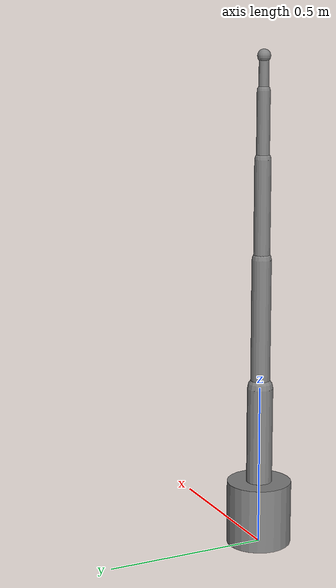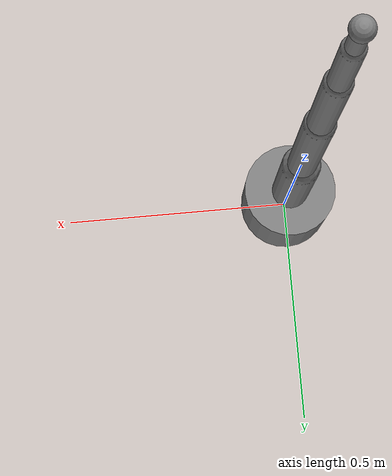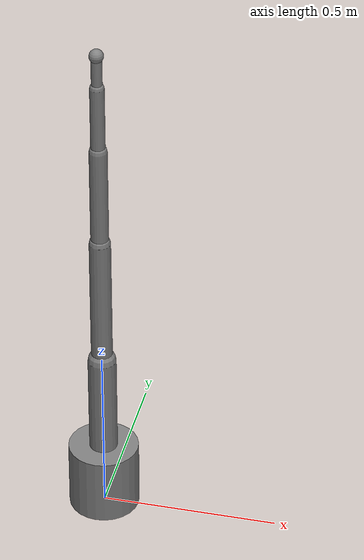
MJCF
<mujoco model="robot_arm">
            <option gravity="0 0 -9.81" timestep="0.001"/>
            <worldbody>
                <body name="base" pos="0 0 0.1">
                    <geom type="cylinder" size="0.1 0.1" mass="5"/>
                    <body name="link1" pos="0 0 0.1">
                        <joint type="hinge" axis="0 0 1"/>
                        <geom type="capsule" size="0.04 0.15" pos="0 0 0.15" mass="2"/>
                        <body name="link2" pos="0 0 0.3">
                            <joint type="hinge" axis="0 1 0"/>
                            <geom type="capsule" size="0.03 0.2" pos="0 0 0.2" mass="1.5"/>
                            <body name="link3" pos="0 0 0.4">
                                <joint type="hinge" axis="0 1 0"/>
                                <geom type="capsule" size="0.025 0.15" pos="0 0 0.15" mass="1"/>
                                <body name="link4" pos="0 0 0.3">
                                    <joint type="hinge" axis="0 0 1"/>
                                    <geom type="capsule" size="0.02 0.1" pos="0 0 0.1" mass="0.5"/>
                                    <body name="link5" pos="0 0 0.2">
                                        <joint type="hinge" axis="0 1 0"/>
                                        <geom type="capsule" size="0.015 0.05" pos="0 0 0.05" mass="0.3"/>
                                        <body name="end_effector" pos="0 0 0.1">
                                            <joint type="hinge" axis="0 0 1"/>
                                            <geom type="sphere" size="0.02" mass="0.1"/>
                                        </body>
                                    </body>
                                </body>
                            </body>
                        </body>
                    </body>
                </body>
            </worldbody>
        </mujoco>
